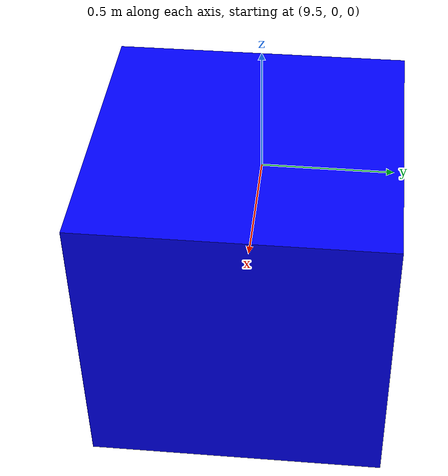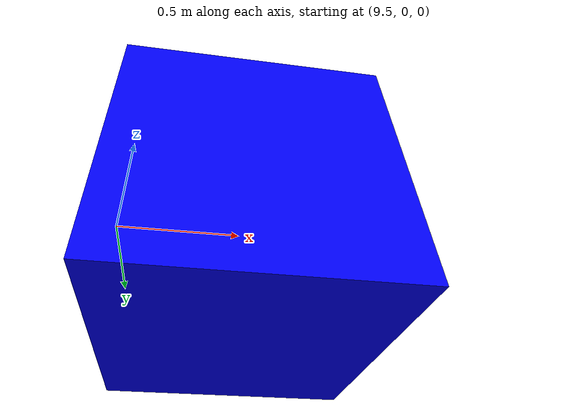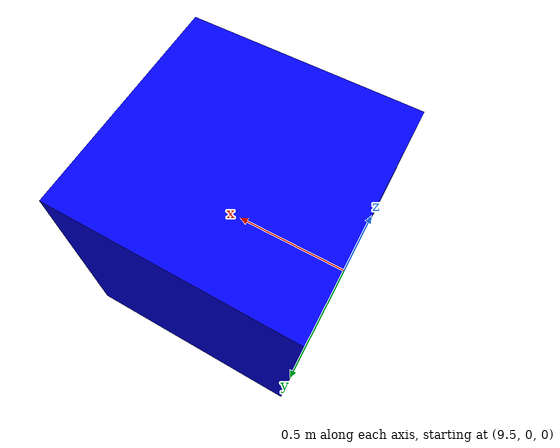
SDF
<?xml version="1.0" encoding="UTF-8"?>
<sdf version="1.6">

        <model name="beacon">
                <static>true</static>
                <link name="beacon_link">
                        <inertial>
                                <ixx>0.16666</ixx>
                                <ixy>0</ixy>
                                <ixz>0</ixz>
                                <iyy>0.16666</iyy>
                                <iyz>0</iyz>
                                <izz>0.16666</izz>
                                <mass>1.0</mass>
                        </inertial>
                        <collision name="box_collision">
                                <geometry>
                                        <box>
                                             <size>1 1 1</size>
                                        </box>
                                </geometry>
                        </collision>

                        <visual name="box_visual">
                                <geometry>
                                        <box>
                                                <size>1 1 1</size>
                                        </box>
                                </geometry>
                                <material>
                                        <ambient>0 0 1 1</ambient>
                                        <diffuse>0 0 1 1</diffuse>
                                        <specular>0 0 1 1</specular>
                                </material>
                        </visual>

                </link>
                <pose>10 0 0 0 0 0</pose>
                <plugin
                filename="ignition-gazebo-rf-comms-system"
                name="ignition::gazebo::systems::RFComms">
                        <address>beacon_signal</address>
                        <topic>beacon_signal/rx</topic>
                        <broker>
                                <bind_service>/broker/bind</bind_service>
                                <unbind_service>/broker/unbind</unbind_service>
                        </broker>
                </plugin>

        </model>

</sdf>
